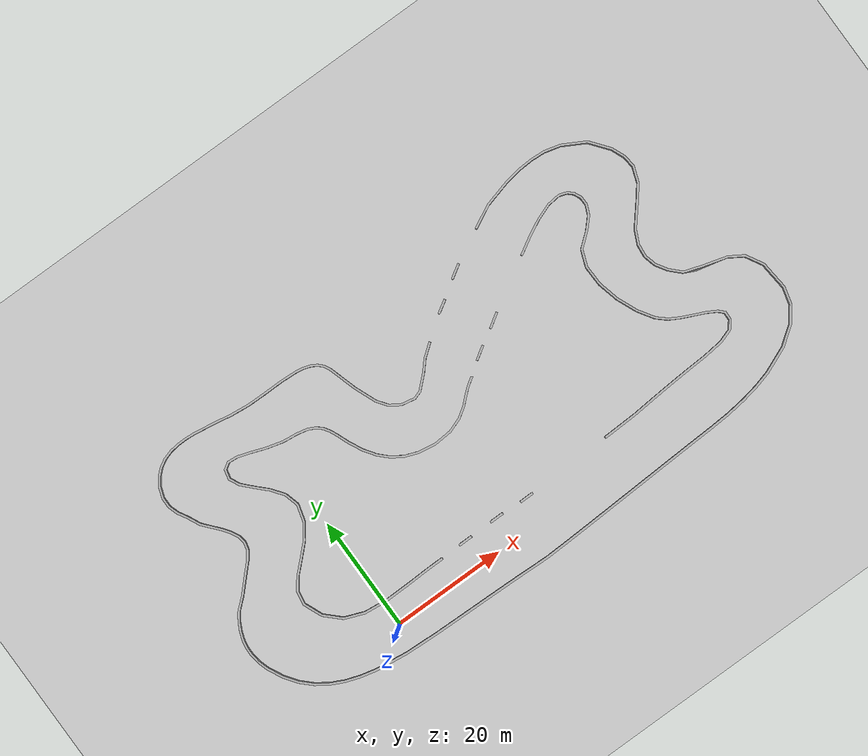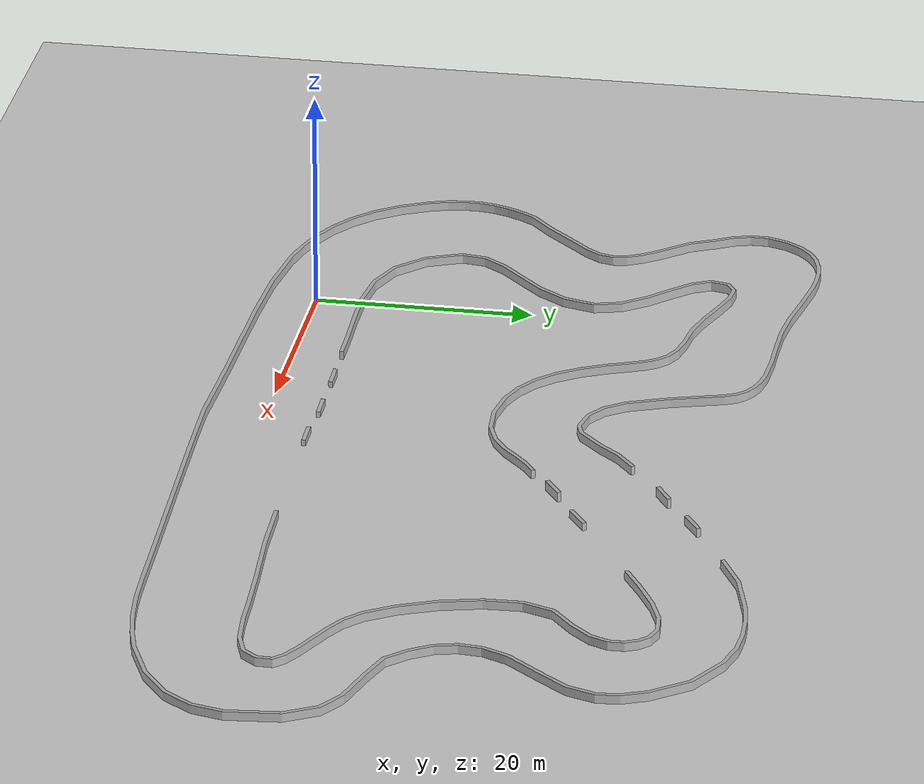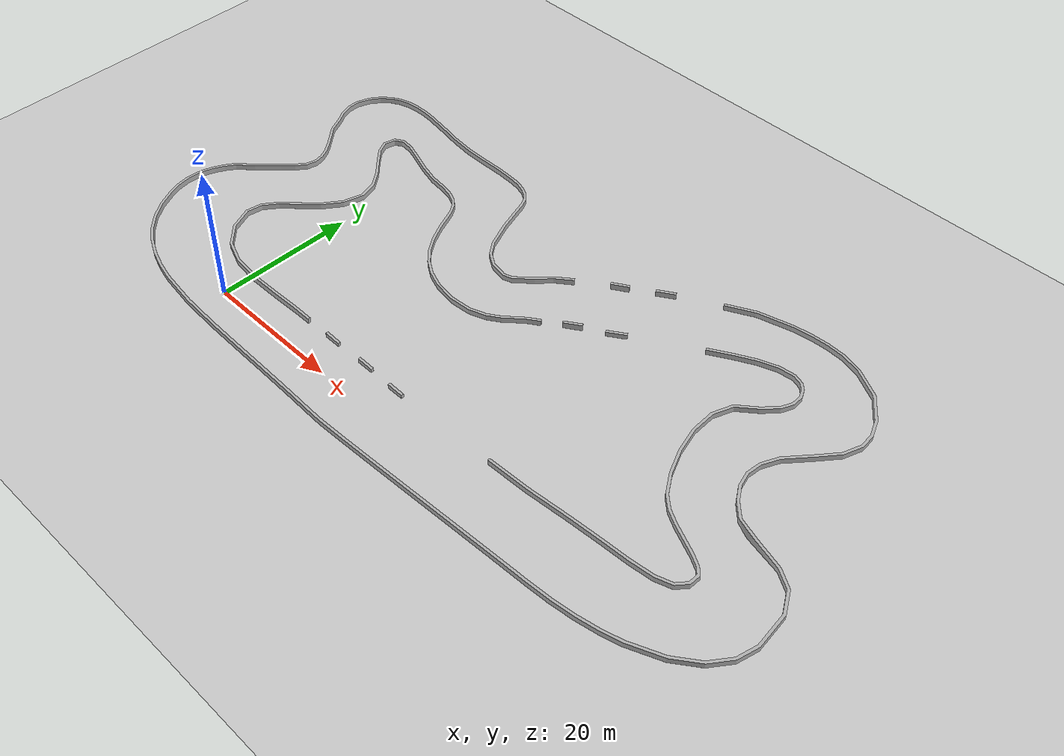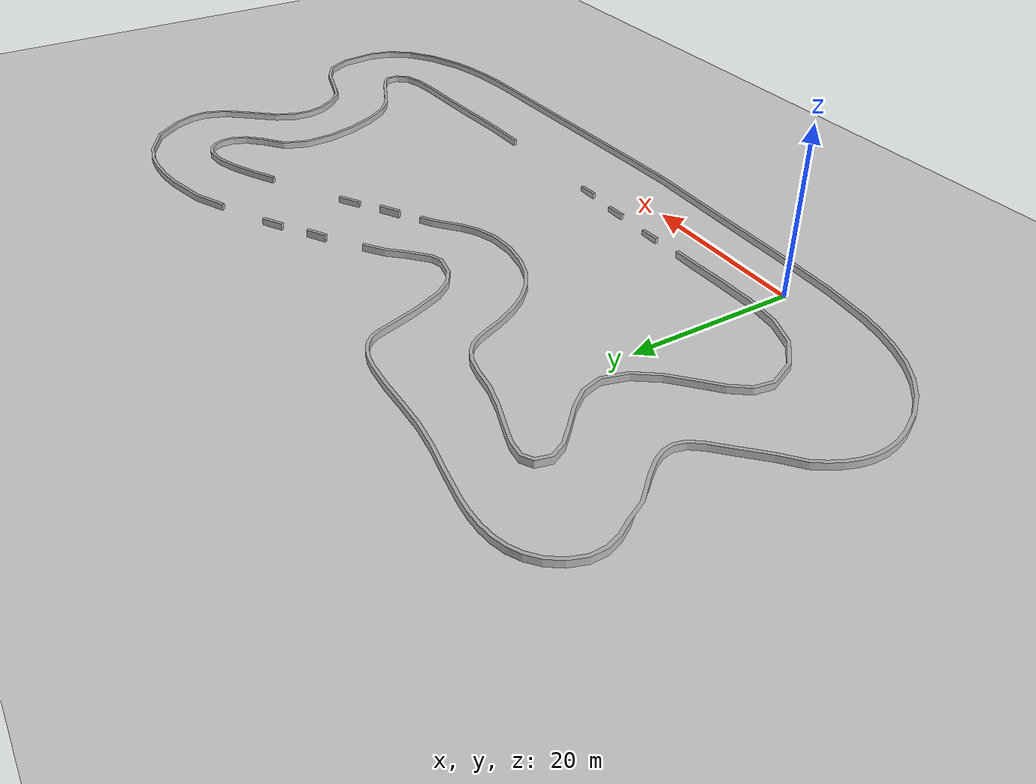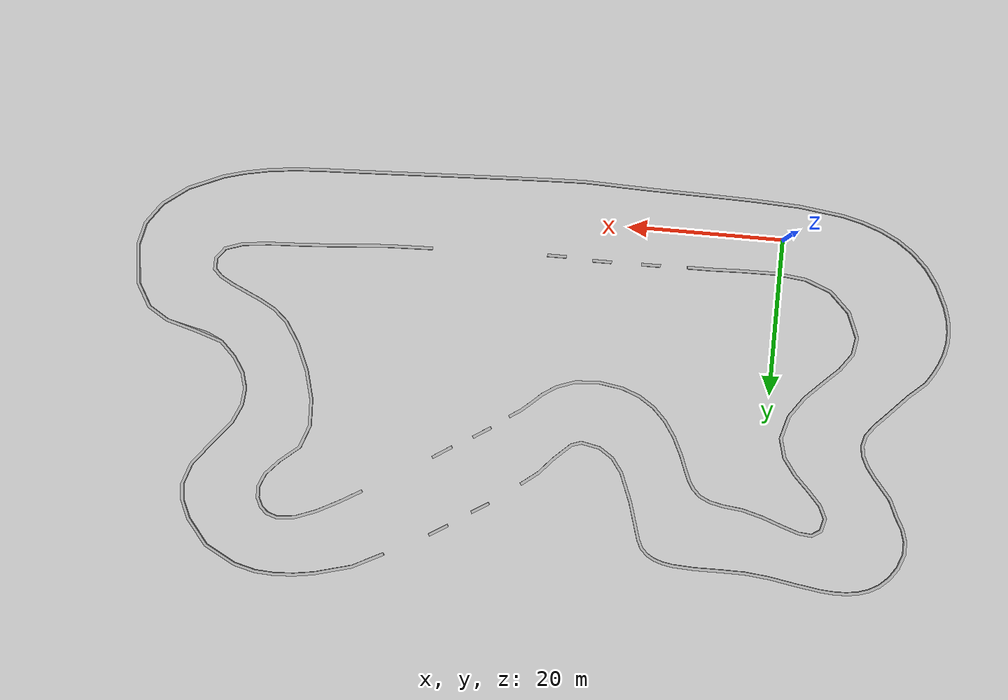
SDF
<sdf version="1.6">
    <world name="EV Grand Prix Holes">
        <scene>
            <ambient>1 1 1 1</ambient>
            <background>0.7 0.7 0.7 1</background>
            <shadows>true</shadows>
            <grid>false</grid>
            <origin_visual>false</origin_visual>
            <sky>
                <clouds>
                    <speed>12</speed>
                </clouds>
            </sky>
        </scene>
        <include>
            <uri>model://sun</uri>
        </include>
        <include>
            <uri>model://ground_plane</uri>
            <pose>0 20 0 0 0 0 0</pose>
        </include>
        <include>
            <uri>model://ground_plane</uri>
            <pose>50 20 0 0 0 0 0</pose>
        </include>
        <include>
            <uri>model://EVGPTrack1</uri>
            <pose>29 22 -51 0 0 -1.5707</pose>
        </include>
    </world>
</sdf>

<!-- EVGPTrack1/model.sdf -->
<sdf version='1.6'>
    <model name='EVGPTrack1'>
        <link name='inner_boundary'>
            <visual name='visual'>
                <geometry>
                    <mesh>
                        <uri>model://EVGPTrack1/roboracing_evgp_raceTrack_styled3_simple.dae</uri>
                        <scale>1 1 2</scale>
                    </mesh>
                </geometry>
                <material>
                    <ambient>0.7 0.7 0.7 1</ambient>
                    <diffuse>0.7 0.7 0.7 1</diffuse>
                </material>
            </visual>
            <collision name='collision'>
                <geometry>
                    <mesh>
                        <uri>model://EVGPTrack1/roboracing_evgp_raceTrack_styled3_simple.dae</uri>
                        <scale>1 1 2</scale>
                    </mesh>
                </geometry>
            </collision>
        </link>

        <link name='outer_boundary'>
            <visual name='visual'>
                <geometry>
                    <mesh>
                        <uri>model://EVGPTrack1/roboracing_evgp_raceTrack_styled3_simple_outer.dae</uri>
                        <scale>1 1 2</scale>
                    </mesh>
                </geometry>
                <material>
                    <ambient>0.7 0.7 0.7 1</ambient>
                    <diffuse>0.7 0.7 0.7 1</diffuse>
                </material>
            </visual>
            <collision name='collision'>
                <geometry>
                    <mesh>
                        <uri>model://EVGPTrack1/roboracing_evgp_raceTrack_styled3_simple_outer.dae</uri>
                        <scale>1 1 2</scale>
                    </mesh>
                </geometry>
            </collision>
        </link>

        <static>true</static>
        <allow_auto_disable>0</allow_auto_disable>
    </model>
</sdf>
